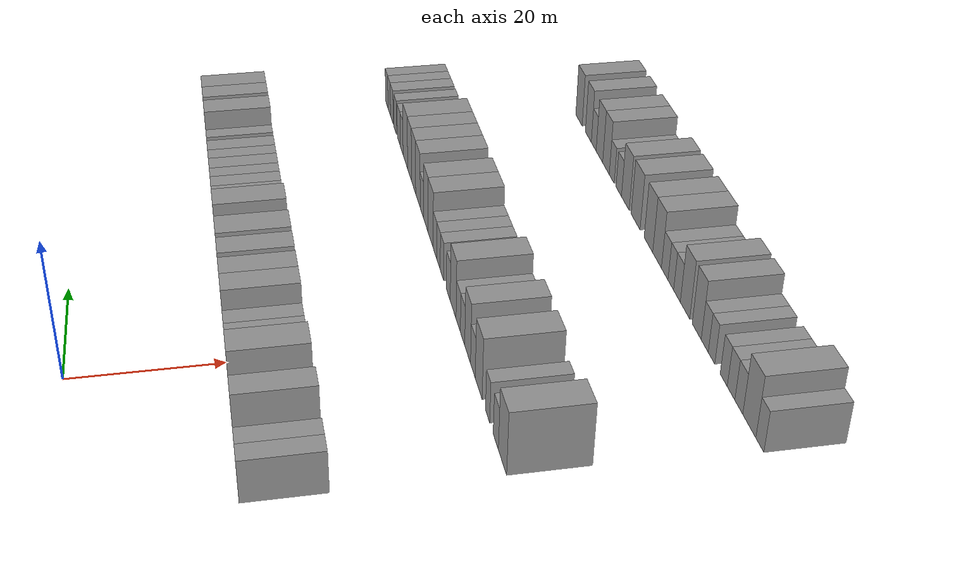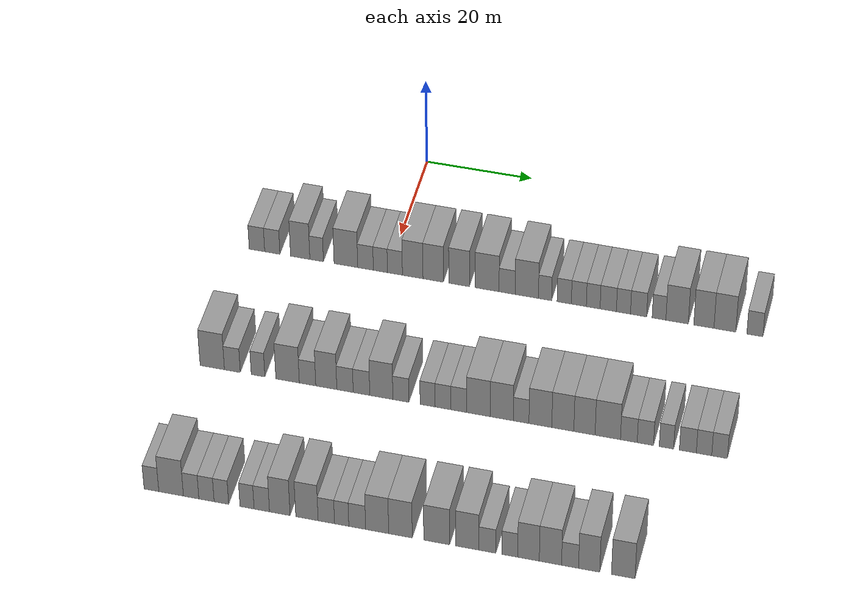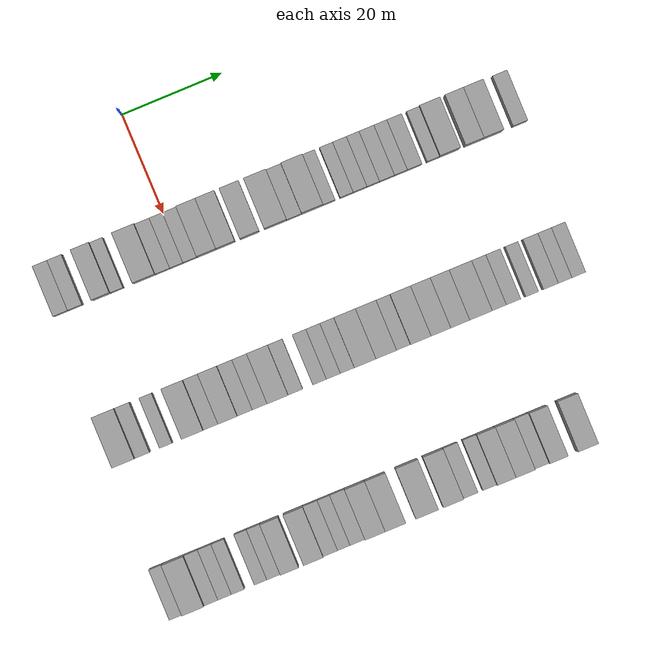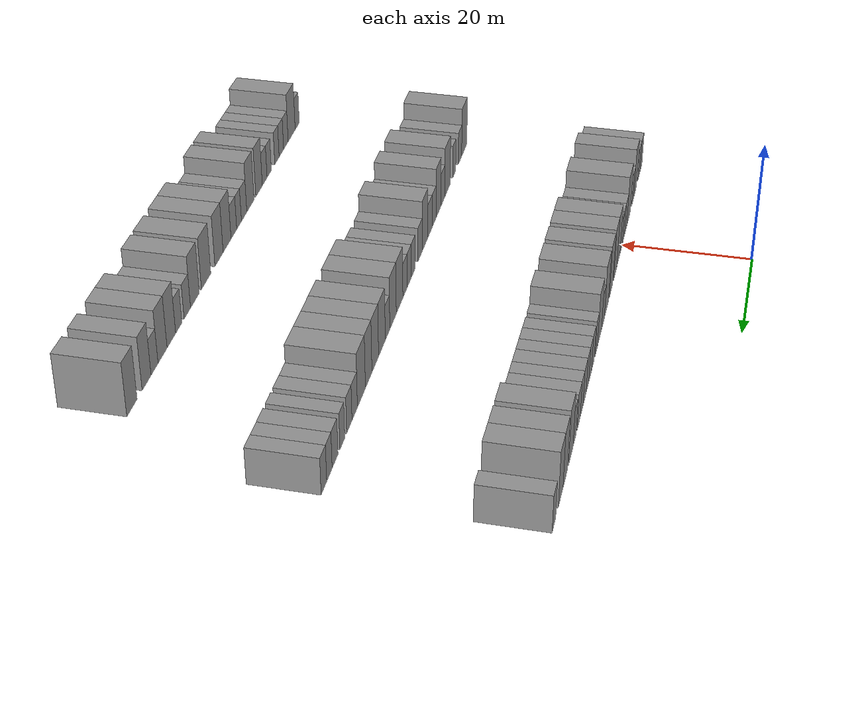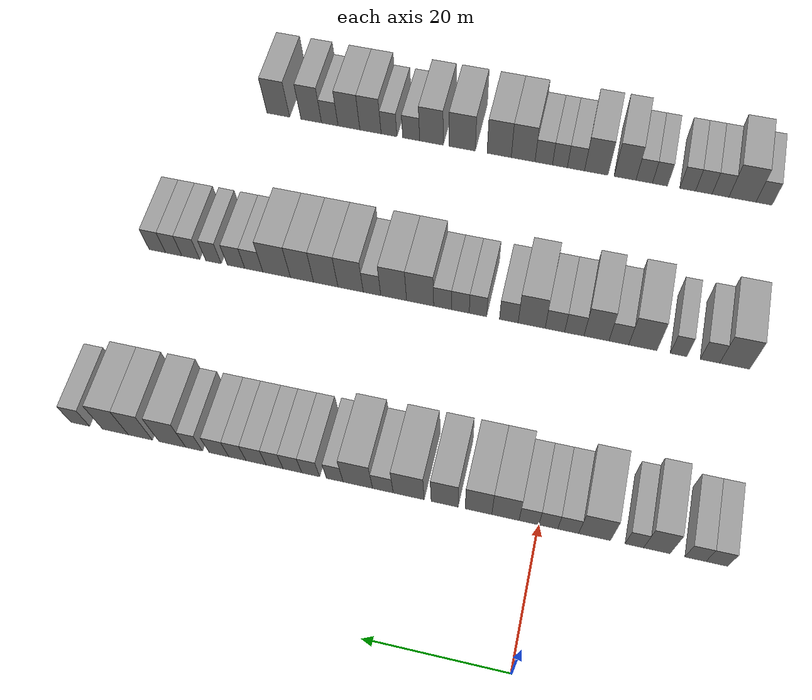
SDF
<sdf version="1.6">
 <world name="default">
  <model name="building_111">
   <static>1</static>
   <pose>25.0000 -24.4640 0 0.000000 0.000000 0.000000</pose>
   <link name="link">
    <pose>0 0 3.00 0 0 0</pose>
    <collision name="collision"><geometry><box><size>10.0000 2.9236 6.0000</size></box></geometry></collision>
    <visual name="visual">
     <cast_shadows>0</cast_shadows>
     <geometry><box><size>10.0000 2.9236 6.0000</size></box></geometry>
     <material>
      <script>
       <uri>model://grey_wall/materials/scripts</uri>
       <uri>model://grey_wall/materials/textures</uri>
       <name>vrc/grey_wall</name>
      </script>
     </material>
    </visual>
   </link>
  </model>
  <model name="building_112">
   <static>1</static>
   <pose>25.0000 -21.5684 0 0.000000 0.000000 0.000000</pose>
   <link name="link">
    <pose>0 0 3.00 0 0 0</pose>
    <collision name="collision"><geometry><box><size>10.0000 2.8677 6.0000</size></box></geometry></collision>
    <visual name="visual">
     <cast_shadows>0</cast_shadows>
     <geometry><box><size>10.0000 2.8677 6.0000</size></box></geometry>
     <material>
      <script>
       <uri>model://grey_wall/materials/scripts</uri>
       <uri>model://grey_wall/materials/textures</uri>
       <name>vrc/grey_wall</name>
      </script>
     </material>
    </visual>
   </link>
  </model>
  <model name="building_113">
   <static>1</static>
   <pose>25.0000 -16.3178 0 0.000000 0.000000 0.000000</pose>
   <link name="link">
    <pose>0 0 4.50 0 0 0</pose>
    <collision name="collision"><geometry><box><size>10.0000 3.6336 9.0000</size></box></geometry></collision>
    <visual name="visual">
     <cast_shadows>0</cast_shadows>
     <geometry><box><size>10.0000 3.6336 9.0000</size></box></geometry>
     <material>
      <script>
       <uri>model://grey_wall/materials/scripts</uri>
       <uri>model://grey_wall/materials/textures</uri>
       <name>vrc/grey_wall</name>
      </script>
     </material>
    </visual>
   </link>
  </model>
  <model name="building_114">
   <static>1</static>
   <pose>25.0000 -13.2259 0 0.000000 0.000000 0.000000</pose>
   <link name="link">
    <pose>0 0 3.00 0 0 0</pose>
    <collision name="collision"><geometry><box><size>10.0000 2.5501 6.0000</size></box></geometry></collision>
    <visual name="visual">
     <cast_shadows>0</cast_shadows>
     <geometry><box><size>10.0000 2.5501 6.0000</size></box></geometry>
     <material>
      <script>
       <uri>model://grey_wall/materials/scripts</uri>
       <uri>model://grey_wall/materials/textures</uri>
       <name>vrc/grey_wall</name>
      </script>
     </material>
    </visual>
   </link>
  </model>
  <model name="building_115">
   <static>1</static>
   <pose>25.0000 -7.7329 0 0.000000 0.000000 0.000000</pose>
   <link name="link">
    <pose>0 0 4.50 0 0 0</pose>
    <collision name="collision"><geometry><box><size>10.0000 4.4360 9.0000</size></box></geometry></collision>
    <visual name="visual">
     <cast_shadows>0</cast_shadows>
     <geometry><box><size>10.0000 4.4360 9.0000</size></box></geometry>
     <material>
      <script>
       <uri>model://grey_wall/materials/scripts</uri>
       <uri>model://grey_wall/materials/textures</uri>
       <name>vrc/grey_wall</name>
      </script>
     </material>
    </visual>
   </link>
  </model>
  <model name="building_116">
   <static>1</static>
   <pose>25.0000 -4.0563 0 0.000000 0.000000 0.000000</pose>
   <link name="link">
    <pose>0 0 3.00 0 0 0</pose>
    <collision name="collision"><geometry><box><size>10.0000 2.9171 6.0000</size></box></geometry></collision>
    <visual name="visual">
     <cast_shadows>0</cast_shadows>
     <geometry><box><size>10.0000 2.9171 6.0000</size></box></geometry>
     <material>
      <script>
       <uri>model://grey_wall/materials/scripts</uri>
       <uri>model://grey_wall/materials/textures</uri>
       <name>vrc/grey_wall</name>
      </script>
     </material>
    </visual>
   </link>
  </model>
  <model name="building_117">
   <static>1</static>
   <pose>25.0000 -1.2800 0 0.000000 0.000000 0.000000</pose>
   <link name="link">
    <pose>0 0 3.00 0 0 0</pose>
    <collision name="collision"><geometry><box><size>10.0000 2.6355 6.0000</size></box></geometry></collision>
    <visual name="visual">
     <cast_shadows>0</cast_shadows>
     <geometry><box><size>10.0000 2.6355 6.0000</size></box></geometry>
     <material>
      <script>
       <uri>model://grey_wall/materials/scripts</uri>
       <uri>model://grey_wall/materials/textures</uri>
       <name>vrc/grey_wall</name>
      </script>
     </material>
    </visual>
   </link>
  </model>
  <model name="building_118">
   <static>1</static>
   <pose>25.0000 1.4300 0 0.000000 0.000000 0.000000</pose>
   <link name="link">
    <pose>0 0 3.00 0 0 0</pose>
    <collision name="collision"><geometry><box><size>10.0000 2.7845 6.0000</size></box></geometry></collision>
    <visual name="visual">
     <cast_shadows>0</cast_shadows>
     <geometry><box><size>10.0000 2.7845 6.0000</size></box></geometry>
     <material>
      <script>
       <uri>model://grey_wall/materials/scripts</uri>
       <uri>model://grey_wall/materials/textures</uri>
       <name>vrc/grey_wall</name>
      </script>
     </material>
    </visual>
   </link>
  </model>
  <model name="building_119">
   <static>1</static>
   <pose>25.0000 4.7410 0 0.000000 0.000000 0.000000</pose>
   <link name="link">
    <pose>0 0 4.50 0 0 0</pose>
    <collision name="collision"><geometry><box><size>10.0000 3.8375 9.0000</size></box></geometry></collision>
    <visual name="visual">
     <cast_shadows>0</cast_shadows>
     <geometry><box><size>10.0000 3.8375 9.0000</size></box></geometry>
     <material>
      <script>
       <uri>model://grey_wall/materials/scripts</uri>
       <uri>model://grey_wall/materials/textures</uri>
       <name>vrc/grey_wall</name>
      </script>
     </material>
    </visual>
   </link>
  </model>
  <model name="building_120">
   <static>1</static>
   <pose>25.0000 8.5505 0 0.000000 0.000000 0.000000</pose>
   <link name="link">
    <pose>0 0 4.50 0 0 0</pose>
    <collision name="collision"><geometry><box><size>10.0000 3.7817 9.0000</size></box></geometry></collision>
    <visual name="visual">
     <cast_shadows>0</cast_shadows>
     <geometry><box><size>10.0000 3.7817 9.0000</size></box></geometry>
     <material>
      <script>
       <uri>model://grey_wall/materials/scripts</uri>
       <uri>model://grey_wall/materials/textures</uri>
       <name>vrc/grey_wall</name>
      </script>
     </material>
    </visual>
   </link>
  </model>
  <model name="building_121">
   <static>1</static>
   <pose>25.0000 13.3614 0 0.000000 0.000000 0.000000</pose>
   <link name="link">
    <pose>0 0 4.50 0 0 0</pose>
    <collision name="collision"><geometry><box><size>10.0000 3.8401 9.0000</size></box></geometry></collision>
    <visual name="visual">
     <cast_shadows>0</cast_shadows>
     <geometry><box><size>10.0000 3.8401 9.0000</size></box></geometry>
     <material>
      <script>
       <uri>model://grey_wall/materials/scripts</uri>
       <uri>model://grey_wall/materials/textures</uri>
       <name>vrc/grey_wall</name>
      </script>
     </material>
    </visual>
   </link>
  </model>
  <model name="building_122">
   <static>1</static>
   <pose>25.0000 18.5114 0 0.000000 0.000000 0.000000</pose>
   <link name="link">
    <pose>0 0 4.50 0 0 0</pose>
    <collision name="collision"><geometry><box><size>10.0000 4.4599 9.0000</size></box></geometry></collision>
    <visual name="visual">
     <cast_shadows>0</cast_shadows>
     <geometry><box><size>10.0000 4.4599 9.0000</size></box></geometry>
     <material>
      <script>
       <uri>model://grey_wall/materials/scripts</uri>
       <uri>model://grey_wall/materials/textures</uri>
       <name>vrc/grey_wall</name>
      </script>
     </material>
    </visual>
   </link>
  </model>
  <model name="building_123">
   <static>1</static>
   <pose>25.0000 22.2302 0 0.000000 0.000000 0.000000</pose>
   <link name="link">
    <pose>0 0 3.00 0 0 0</pose>
    <collision name="collision"><geometry><box><size>10.0000 2.9778 6.0000</size></box></geometry></collision>
    <visual name="visual">
     <cast_shadows>0</cast_shadows>
     <geometry><box><size>10.0000 2.9778 6.0000</size></box></geometry>
     <material>
      <script>
       <uri>model://grey_wall/materials/scripts</uri>
       <uri>model://grey_wall/materials/textures</uri>
       <name>vrc/grey_wall</name>
      </script>
     </material>
    </visual>
   </link>
  </model>
  <model name="building_124">
   <static>1</static>
   <pose>25.0000 25.8621 0 0.000000 0.000000 0.000000</pose>
   <link name="link">
    <pose>0 0 4.50 0 0 0</pose>
    <collision name="collision"><geometry><box><size>10.0000 4.2860 9.0000</size></box></geometry></collision>
    <visual name="visual">
     <cast_shadows>0</cast_shadows>
     <geometry><box><size>10.0000 4.2860 9.0000</size></box></geometry>
     <material>
      <script>
       <uri>model://grey_wall/materials/scripts</uri>
       <uri>model://grey_wall/materials/textures</uri>
       <name>vrc/grey_wall</name>
      </script>
     </material>
    </visual>
   </link>
  </model>
  <model name="building_125">
   <static>1</static>
   <pose>25.0000 29.2216 0 0.000000 0.000000 0.000000</pose>
   <link name="link">
    <pose>0 0 3.00 0 0 0</pose>
    <collision name="collision"><geometry><box><size>10.0000 2.4331 6.0000</size></box></geometry></collision>
    <visual name="visual">
     <cast_shadows>0</cast_shadows>
     <geometry><box><size>10.0000 2.4331 6.0000</size></box></geometry>
     <material>
      <script>
       <uri>model://grey_wall/materials/scripts</uri>
       <uri>model://grey_wall/materials/textures</uri>
       <name>vrc/grey_wall</name>
      </script>
     </material>
    </visual>
   </link>
  </model>
  <model name="building_126">
   <static>1</static>
   <pose>25.0000 32.7442 0 0.000000 0.000000 0.000000</pose>
   <link name="link">
    <pose>0 0 3.00 0 0 0</pose>
    <collision name="collision"><geometry><box><size>10.0000 2.6121 6.0000</size></box></geometry></collision>
    <visual name="visual">
     <cast_shadows>0</cast_shadows>
     <geometry><box><size>10.0000 2.6121 6.0000</size></box></geometry>
     <material>
      <script>
       <uri>model://grey_wall/materials/scripts</uri>
       <uri>model://grey_wall/materials/textures</uri>
       <name>vrc/grey_wall</name>
      </script>
     </material>
    </visual>
   </link>
  </model>
  <model name="building_127">
   <static>1</static>
   <pose>25.0000 35.4242 0 0.000000 0.000000 0.000000</pose>
   <link name="link">
    <pose>0 0 3.00 0 0 0</pose>
    <collision name="collision"><geometry><box><size>10.0000 2.7478 6.0000</size></box></geometry></collision>
    <visual name="visual">
     <cast_shadows>0</cast_shadows>
     <geometry><box><size>10.0000 2.7478 6.0000</size></box></geometry>
     <material>
      <script>
       <uri>model://grey_wall/materials/scripts</uri>
       <uri>model://grey_wall/materials/textures</uri>
       <name>vrc/grey_wall</name>
      </script>
     </material>
    </visual>
   </link>
  </model>
  <model name="building_128">
   <static>1</static>
   <pose>25.0000 38.0592 0 0.000000 0.000000 0.000000</pose>
   <link name="link">
    <pose>0 0 3.00 0 0 0</pose>
    <collision name="collision"><geometry><box><size>10.0000 2.5222 6.0000</size></box></geometry></collision>
    <visual name="visual">
     <cast_shadows>0</cast_shadows>
     <geometry><box><size>10.0000 2.5222 6.0000</size></box></geometry>
     <material>
      <script>
       <uri>model://grey_wall/materials/scripts</uri>
       <uri>model://grey_wall/materials/textures</uri>
       <name>vrc/grey_wall</name>
      </script>
     </material>
    </visual>
   </link>
  </model>
  <model name="building_129">
   <static>1</static>
   <pose>25.0000 40.8072 0 0.000000 0.000000 0.000000</pose>
   <link name="link">
    <pose>0 0 3.00 0 0 0</pose>
    <collision name="collision"><geometry><box><size>10.0000 2.9737 6.0000</size></box></geometry></collision>
    <visual name="visual">
     <cast_shadows>0</cast_shadows>
     <geometry><box><size>10.0000 2.9737 6.0000</size></box></geometry>
     <material>
      <script>
       <uri>model://grey_wall/materials/scripts</uri>
       <uri>model://grey_wall/materials/textures</uri>
       <name>vrc/grey_wall</name>
      </script>
     </material>
    </visual>
   </link>
  </model>
  <model name="building_130">
   <static>1</static>
   <pose>25.0000 43.5850 0 0.000000 0.000000 0.000000</pose>
   <link name="link">
    <pose>0 0 3.00 0 0 0</pose>
    <collision name="collision"><geometry><box><size>10.0000 2.5820 6.0000</size></box></geometry></collision>
    <visual name="visual">
     <cast_shadows>0</cast_shadows>
     <geometry><box><size>10.0000 2.5820 6.0000</size></box></geometry>
     <material>
      <script>
       <uri>model://grey_wall/materials/scripts</uri>
       <uri>model://grey_wall/materials/textures</uri>
       <name>vrc/grey_wall</name>
      </script>
     </material>
    </visual>
   </link>
  </model>
  <model name="building_131">
   <static>1</static>
   <pose>25.0000 46.3458 0 0.000000 0.000000 0.000000</pose>
   <link name="link">
    <pose>0 0 3.00 0 0 0</pose>
    <collision name="collision"><geometry><box><size>10.0000 2.9395 6.0000</size></box></geometry></collision>
    <visual name="visual">
     <cast_shadows>0</cast_shadows>
     <geometry><box><size>10.0000 2.9395 6.0000</size></box></geometry>
     <material>
      <script>
       <uri>model://grey_wall/materials/scripts</uri>
       <uri>model://grey_wall/materials/textures</uri>
       <name>vrc/grey_wall</name>
      </script>
     </material>
    </visual>
   </link>
  </model>
  <model name="building_132">
   <static>1</static>
   <pose>25.0000 50.0695 0 0.000000 0.000000 0.000000</pose>
   <link name="link">
    <pose>0 0 3.00 0 0 0</pose>
    <collision name="collision"><geometry><box><size>10.0000 2.5079 6.0000</size></box></geometry></collision>
    <visual name="visual">
     <cast_shadows>0</cast_shadows>
     <geometry><box><size>10.0000 2.5079 6.0000</size></box></geometry>
     <material>
      <script>
       <uri>model://grey_wall/materials/scripts</uri>
       <uri>model://grey_wall/materials/textures</uri>
       <name>vrc/grey_wall</name>
      </script>
     </material>
    </visual>
   </link>
  </model>
  <model name="building_133">
   <static>1</static>
   <pose>25.0000 53.3549 0 0.000000 0.000000 0.000000</pose>
   <link name="link">
    <pose>0 0 4.50 0 0 0</pose>
    <collision name="collision"><geometry><box><size>10.0000 4.0630 9.0000</size></box></geometry></collision>
    <visual name="visual">
     <cast_shadows>0</cast_shadows>
     <geometry><box><size>10.0000 4.0630 9.0000</size></box></geometry>
     <material>
      <script>
       <uri>model://grey_wall/materials/scripts</uri>
       <uri>model://grey_wall/materials/textures</uri>
       <name>vrc/grey_wall</name>
      </script>
     </material>
    </visual>
   </link>
  </model>
  <model name="building_134">
   <static>1</static>
   <pose>25.0000 58.2160 0 0.000000 0.000000 0.000000</pose>
   <link name="link">
    <pose>0 0 4.50 0 0 0</pose>
    <collision name="collision"><geometry><box><size>10.0000 3.6592 9.0000</size></box></geometry></collision>
    <visual name="visual">
     <cast_shadows>0</cast_shadows>
     <geometry><box><size>10.0000 3.6592 9.0000</size></box></geometry>
     <material>
      <script>
       <uri>model://grey_wall/materials/scripts</uri>
       <uri>model://grey_wall/materials/textures</uri>
       <name>vrc/grey_wall</name>
      </script>
     </material>
    </visual>
   </link>
  </model>
  <model name="building_135">
   <static>1</static>
   <pose>25.0000 62.0174 0 0.000000 0.000000 0.000000</pose>
   <link name="link">
    <pose>0 0 4.50 0 0 0</pose>
    <collision name="collision"><geometry><box><size>10.0000 3.9435 9.0000</size></box></geometry></collision>
    <visual name="visual">
     <cast_shadows>0</cast_shadows>
     <geometry><box><size>10.0000 3.9435 9.0000</size></box></geometry>
     <material>
      <script>
       <uri>model://grey_wall/materials/scripts</uri>
       <uri>model://grey_wall/materials/textures</uri>
       <name>vrc/grey_wall</name>
      </script>
     </material>
    </visual>
   </link>
  </model>
  <model name="building_136">
   <static>1</static>
   <pose>25.0000 67.4396 0 0.000000 0.000000 0.000000</pose>
   <link name="link">
    <pose>0 0 3.00 0 0 0</pose>
    <collision name="collision"><geometry><box><size>10.0000 2.9009 6.0000</size></box></geometry></collision>
    <visual name="visual">
     <cast_shadows>0</cast_shadows>
     <geometry><box><size>10.0000 2.9009 6.0000</size></box></geometry>
     <material>
      <script>
       <uri>model://grey_wall/materials/scripts</uri>
       <uri>model://grey_wall/materials/textures</uri>
       <name>vrc/grey_wall</name>
      </script>
     </material>
    </visual>
   </link>
  </model>
  <model name="building_356">
   <static>1</static>
   <pose>55.0000 -24.1548 0 0.000000 0.000000 0.000000</pose>
   <link name="link">
    <pose>0 0 4.50 0 0 0</pose>
    <collision name="collision"><geometry><box><size>10.0000 4.4505 9.0000</size></box></geometry></collision>
    <visual name="visual">
     <cast_shadows>0</cast_shadows>
     <geometry><box><size>10.0000 4.4505 9.0000</size></box></geometry>
     <material>
      <script>
       <uri>model://grey_wall/materials/scripts</uri>
       <uri>model://grey_wall/materials/textures</uri>
       <name>vrc/grey_wall</name>
      </script>
     </material>
    </visual>
   </link>
  </model>
  <model name="building_357">
   <static>1</static>
   <pose>55.0000 -20.4792 0 0.000000 0.000000 0.000000</pose>
   <link name="link">
    <pose>0 0 3.00 0 0 0</pose>
    <collision name="collision"><geometry><box><size>10.0000 2.9007 6.0000</size></box></geometry></collision>
    <visual name="visual">
     <cast_shadows>0</cast_shadows>
     <geometry><box><size>10.0000 2.9007 6.0000</size></box></geometry>
     <material>
      <script>
       <uri>model://grey_wall/materials/scripts</uri>
       <uri>model://grey_wall/materials/textures</uri>
       <name>vrc/grey_wall</name>
      </script>
     </material>
    </visual>
   </link>
  </model>
  <model name="building_358">
   <static>1</static>
   <pose>55.0000 -15.7833 0 0.000000 0.000000 0.000000</pose>
   <link name="link">
    <pose>0 0 3.00 0 0 0</pose>
    <collision name="collision"><geometry><box><size>10.0000 2.4911 6.0000</size></box></geometry></collision>
    <visual name="visual">
     <cast_shadows>0</cast_shadows>
     <geometry><box><size>10.0000 2.4911 6.0000</size></box></geometry>
     <material>
      <script>
       <uri>model://grey_wall/materials/scripts</uri>
       <uri>model://grey_wall/materials/textures</uri>
       <name>vrc/grey_wall</name>
      </script>
     </material>
    </visual>
   </link>
  </model>
  <model name="building_359">
   <static>1</static>
   <pose>55.0000 -10.3987 0 0.000000 0.000000 0.000000</pose>
   <link name="link">
    <pose>0 0 4.50 0 0 0</pose>
    <collision name="collision"><geometry><box><size>10.0000 4.2783 9.0000</size></box></geometry></collision>
    <visual name="visual">
     <cast_shadows>0</cast_shadows>
     <geometry><box><size>10.0000 4.2783 9.0000</size></box></geometry>
     <material>
      <script>
       <uri>model://grey_wall/materials/scripts</uri>
       <uri>model://grey_wall/materials/textures</uri>
       <name>vrc/grey_wall</name>
      </script>
     </material>
    </visual>
   </link>
  </model>
  <model name="building_360">
   <static>1</static>
   <pose>55.0000 -6.7649 0 0.000000 0.000000 0.000000</pose>
   <link name="link">
    <pose>0 0 3.00 0 0 0</pose>
    <collision name="collision"><geometry><box><size>10.0000 2.9892 6.0000</size></box></geometry></collision>
    <visual name="visual">
     <cast_shadows>0</cast_shadows>
     <geometry><box><size>10.0000 2.9892 6.0000</size></box></geometry>
     <material>
      <script>
       <uri>model://grey_wall/materials/scripts</uri>
       <uri>model://grey_wall/materials/textures</uri>
       <name>vrc/grey_wall</name>
      </script>
     </material>
    </visual>
   </link>
  </model>
  <model name="building_361">
   <static>1</static>
   <pose>55.0000 -3.3612 0 0.000000 0.000000 0.000000</pose>
   <link name="link">
    <pose>0 0 4.50 0 0 0</pose>
    <collision name="collision"><geometry><box><size>10.0000 3.8183 9.0000</size></box></geometry></collision>
    <visual name="visual">
     <cast_shadows>0</cast_shadows>
     <geometry><box><size>10.0000 3.8183 9.0000</size></box></geometry>
     <material>
      <script>
       <uri>model://grey_wall/materials/scripts</uri>
       <uri>model://grey_wall/materials/textures</uri>
       <name>vrc/grey_wall</name>
      </script>
     </material>
    </visual>
   </link>
  </model>
  <model name="building_362">
   <static>1</static>
   <pose>55.0000 0.0303 0 0.000000 0.000000 0.000000</pose>
   <link name="link">
    <pose>0 0 3.00 0 0 0</pose>
    <collision name="collision"><geometry><box><size>10.0000 2.9646 6.0000</size></box></geometry></collision>
    <visual name="visual">
     <cast_shadows>0</cast_shadows>
     <geometry><box><size>10.0000 2.9646 6.0000</size></box></geometry>
     <material>
      <script>
       <uri>model://grey_wall/materials/scripts</uri>
       <uri>model://grey_wall/materials/textures</uri>
       <name>vrc/grey_wall</name>
      </script>
     </material>
    </visual>
   </link>
  </model>
  <model name="building_363">
   <static>1</static>
   <pose>55.0000 3.0092 0 0.000000 0.000000 0.000000</pose>
   <link name="link">
    <pose>0 0 3.00 0 0 0</pose>
    <collision name="collision"><geometry><box><size>10.0000 2.9932 6.0000</size></box></geometry></collision>
    <visual name="visual">
     <cast_shadows>0</cast_shadows>
     <geometry><box><size>10.0000 2.9932 6.0000</size></box></geometry>
     <material>
      <script>
       <uri>model://grey_wall/materials/scripts</uri>
       <uri>model://grey_wall/materials/textures</uri>
       <name>vrc/grey_wall</name>
      </script>
     </material>
    </visual>
   </link>
  </model>
  <model name="building_364">
   <static>1</static>
   <pose>55.0000 6.5915 0 0.000000 0.000000 0.000000</pose>
   <link name="link">
    <pose>0 0 4.50 0 0 0</pose>
    <collision name="collision"><geometry><box><size>10.0000 4.1714 9.0000</size></box></geometry></collision>
    <visual name="visual">
     <cast_shadows>0</cast_shadows>
     <geometry><box><size>10.0000 4.1714 9.0000</size></box></geometry>
     <material>
      <script>
       <uri>model://grey_wall/materials/scripts</uri>
       <uri>model://grey_wall/materials/textures</uri>
       <name>vrc/grey_wall</name>
      </script>
     </material>
    </visual>
   </link>
  </model>
  <model name="building_365">
   <static>1</static>
   <pose>55.0000 10.1270 0 0.000000 0.000000 0.000000</pose>
   <link name="link">
    <pose>0 0 3.00 0 0 0</pose>
    <collision name="collision"><geometry><box><size>10.0000 2.8998 6.0000</size></box></geometry></collision>
    <visual name="visual">
     <cast_shadows>0</cast_shadows>
     <geometry><box><size>10.0000 2.8998 6.0000</size></box></geometry>
     <material>
      <script>
       <uri>model://grey_wall/materials/scripts</uri>
       <uri>model://grey_wall/materials/textures</uri>
       <name>vrc/grey_wall</name>
      </script>
     </material>
    </visual>
   </link>
  </model>
  <model name="building_366">
   <static>1</static>
   <pose>55.0000 14.9346 0 0.000000 0.000000 0.000000</pose>
   <link name="link">
    <pose>0 0 3.00 0 0 0</pose>
    <collision name="collision"><geometry><box><size>10.0000 2.7154 6.0000</size></box></geometry></collision>
    <visual name="visual">
     <cast_shadows>0</cast_shadows>
     <geometry><box><size>10.0000 2.7154 6.0000</size></box></geometry>
     <material>
      <script>
       <uri>model://grey_wall/materials/scripts</uri>
       <uri>model://grey_wall/materials/textures</uri>
       <name>vrc/grey_wall</name>
      </script>
     </material>
    </visual>
   </link>
  </model>
  <model name="building_367">
   <static>1</static>
   <pose>55.0000 17.6912 0 0.000000 0.000000 0.000000</pose>
   <link name="link">
    <pose>0 0 3.00 0 0 0</pose>
    <collision name="collision"><geometry><box><size>10.0000 2.7979 6.0000</size></box></geometry></collision>
    <visual name="visual">
     <cast_shadows>0</cast_shadows>
     <geometry><box><size>10.0000 2.7979 6.0000</size></box></geometry>
     <material>
      <script>
       <uri>model://grey_wall/materials/scripts</uri>
       <uri>model://grey_wall/materials/textures</uri>
       <name>vrc/grey_wall</name>
      </script>
     </material>
    </visual>
   </link>
  </model>
  <model name="building_368">
   <static>1</static>
   <pose>55.0000 20.4793 0 0.000000 0.000000 0.000000</pose>
   <link name="link">
    <pose>0 0 3.00 0 0 0</pose>
    <collision name="collision"><geometry><box><size>10.0000 2.7785 6.0000</size></box></geometry></collision>
    <visual name="visual">
     <cast_shadows>0</cast_shadows>
     <geometry><box><size>10.0000 2.7785 6.0000</size></box></geometry>
     <material>
      <script>
       <uri>model://grey_wall/materials/scripts</uri>
       <uri>model://grey_wall/materials/textures</uri>
       <name>vrc/grey_wall</name>
      </script>
     </material>
    </visual>
   </link>
  </model>
  <model name="building_369">
   <static>1</static>
   <pose>55.0000 24.0112 0 0.000000 0.000000 0.000000</pose>
   <link name="link">
    <pose>0 0 4.50 0 0 0</pose>
    <collision name="collision"><geometry><box><size>10.0000 4.2852 9.0000</size></box></geometry></collision>
    <visual name="visual">
     <cast_shadows>0</cast_shadows>
     <geometry><box><size>10.0000 4.2852 9.0000</size></box></geometry>
     <material>
      <script>
       <uri>model://grey_wall/materials/scripts</uri>
       <uri>model://grey_wall/materials/textures</uri>
       <name>vrc/grey_wall</name>
      </script>
     </material>
    </visual>
   </link>
  </model>
  <model name="building_370">
   <static>1</static>
   <pose>55.0000 28.2032 0 0.000000 0.000000 0.000000</pose>
   <link name="link">
    <pose>0 0 4.50 0 0 0</pose>
    <collision name="collision"><geometry><box><size>10.0000 4.0988 9.0000</size></box></geometry></collision>
    <visual name="visual">
     <cast_shadows>0</cast_shadows>
     <geometry><box><size>10.0000 4.0988 9.0000</size></box></geometry>
     <material>
      <script>
       <uri>model://grey_wall/materials/scripts</uri>
       <uri>model://grey_wall/materials/textures</uri>
       <name>vrc/grey_wall</name>
      </script>
     </material>
    </visual>
   </link>
  </model>
  <model name="building_371">
   <static>1</static>
   <pose>55.0000 31.6506 0 0.000000 0.000000 0.000000</pose>
   <link name="link">
    <pose>0 0 3.00 0 0 0</pose>
    <collision name="collision"><geometry><box><size>10.0000 2.7960 6.0000</size></box></geometry></collision>
    <visual name="visual">
     <cast_shadows>0</cast_shadows>
     <geometry><box><size>10.0000 2.7960 6.0000</size></box></geometry>
     <material>
      <script>
       <uri>model://grey_wall/materials/scripts</uri>
       <uri>model://grey_wall/materials/textures</uri>
       <name>vrc/grey_wall</name>
      </script>
     </material>
    </visual>
   </link>
  </model>
  <model name="building_372">
   <static>1</static>
   <pose>55.0000 35.0815 0 0.000000 0.000000 0.000000</pose>
   <link name="link">
    <pose>0 0 4.50 0 0 0</pose>
    <collision name="collision"><geometry><box><size>10.0000 4.0657 9.0000</size></box></geometry></collision>
    <visual name="visual">
     <cast_shadows>0</cast_shadows>
     <geometry><box><size>10.0000 4.0657 9.0000</size></box></geometry>
     <material>
      <script>
       <uri>model://grey_wall/materials/scripts</uri>
       <uri>model://grey_wall/materials/textures</uri>
       <name>vrc/grey_wall</name>
      </script>
     </material>
    </visual>
   </link>
  </model>
  <model name="building_373">
   <static>1</static>
   <pose>55.0000 39.0700 0 0.000000 0.000000 0.000000</pose>
   <link name="link">
    <pose>0 0 4.50 0 0 0</pose>
    <collision name="collision"><geometry><box><size>10.0000 3.9113 9.0000</size></box></geometry></collision>
    <visual name="visual">
     <cast_shadows>0</cast_shadows>
     <geometry><box><size>10.0000 3.9113 9.0000</size></box></geometry>
     <material>
      <script>
       <uri>model://grey_wall/materials/scripts</uri>
       <uri>model://grey_wall/materials/textures</uri>
       <name>vrc/grey_wall</name>
      </script>
     </material>
    </visual>
   </link>
  </model>
  <model name="building_374">
   <static>1</static>
   <pose>55.0000 42.9078 0 0.000000 0.000000 0.000000</pose>
   <link name="link">
    <pose>0 0 4.50 0 0 0</pose>
    <collision name="collision"><geometry><box><size>10.0000 3.7644 9.0000</size></box></geometry></collision>
    <visual name="visual">
     <cast_shadows>0</cast_shadows>
     <geometry><box><size>10.0000 3.7644 9.0000</size></box></geometry>
     <material>
      <script>
       <uri>model://grey_wall/materials/scripts</uri>
       <uri>model://grey_wall/materials/textures</uri>
       <name>vrc/grey_wall</name>
      </script>
     </material>
    </visual>
   </link>
  </model>
  <model name="building_375">
   <static>1</static>
   <pose>55.0000 47.0318 0 0.000000 0.000000 0.000000</pose>
   <link name="link">
    <pose>0 0 4.50 0 0 0</pose>
    <collision name="collision"><geometry><box><size>10.0000 4.4837 9.0000</size></box></geometry></collision>
    <visual name="visual">
     <cast_shadows>0</cast_shadows>
     <geometry><box><size>10.0000 4.4837 9.0000</size></box></geometry>
     <material>
      <script>
       <uri>model://grey_wall/materials/scripts</uri>
       <uri>model://grey_wall/materials/textures</uri>
       <name>vrc/grey_wall</name>
      </script>
     </material>
    </visual>
   </link>
  </model>
  <model name="building_376">
   <static>1</static>
   <pose>55.0000 50.7520 0 0.000000 0.000000 0.000000</pose>
   <link name="link">
    <pose>0 0 3.00 0 0 0</pose>
    <collision name="collision"><geometry><box><size>10.0000 2.9566 6.0000</size></box></geometry></collision>
    <visual name="visual">
     <cast_shadows>0</cast_shadows>
     <geometry><box><size>10.0000 2.9566 6.0000</size></box></geometry>
     <material>
      <script>
       <uri>model://grey_wall/materials/scripts</uri>
       <uri>model://grey_wall/materials/textures</uri>
       <name>vrc/grey_wall</name>
      </script>
     </material>
    </visual>
   </link>
  </model>
  <model name="building_377">
   <static>1</static>
   <pose>55.0000 53.6667 0 0.000000 0.000000 0.000000</pose>
   <link name="link">
    <pose>0 0 3.00 0 0 0</pose>
    <collision name="collision"><geometry><box><size>10.0000 2.8728 6.0000</size></box></geometry></collision>
    <visual name="visual">
     <cast_shadows>0</cast_shadows>
     <geometry><box><size>10.0000 2.8728 6.0000</size></box></geometry>
     <material>
      <script>
       <uri>model://grey_wall/materials/scripts</uri>
       <uri>model://grey_wall/materials/textures</uri>
       <name>vrc/grey_wall</name>
      </script>
     </material>
    </visual>
   </link>
  </model>
  <model name="building_378">
   <static>1</static>
   <pose>55.0000 57.3732 0 0.000000 0.000000 0.000000</pose>
   <link name="link">
    <pose>0 0 3.00 0 0 0</pose>
    <collision name="collision"><geometry><box><size>10.0000 2.5402 6.0000</size></box></geometry></collision>
    <visual name="visual">
     <cast_shadows>0</cast_shadows>
     <geometry><box><size>10.0000 2.5402 6.0000</size></box></geometry>
     <material>
      <script>
       <uri>model://grey_wall/materials/scripts</uri>
       <uri>model://grey_wall/materials/textures</uri>
       <name>vrc/grey_wall</name>
      </script>
     </material>
    </visual>
   </link>
  </model>
  <model name="building_379">
   <static>1</static>
   <pose>55.0000 61.1310 0 0.000000 0.000000 0.000000</pose>
   <link name="link">
    <pose>0 0 3.00 0 0 0</pose>
    <collision name="collision"><geometry><box><size>10.0000 2.9754 6.0000</size></box></geometry></collision>
    <visual name="visual">
     <cast_shadows>0</cast_shadows>
     <geometry><box><size>10.0000 2.9754 6.0000</size></box></geometry>
     <material>
      <script>
       <uri>model://grey_wall/materials/scripts</uri>
       <uri>model://grey_wall/materials/textures</uri>
       <name>vrc/grey_wall</name>
      </script>
     </material>
    </visual>
   </link>
  </model>
  <model name="building_380">
   <static>1</static>
   <pose>55.0000 63.9722 0 0.000000 0.000000 0.000000</pose>
   <link name="link">
    <pose>0 0 3.00 0 0 0</pose>
    <collision name="collision"><geometry><box><size>10.0000 2.7070 6.0000</size></box></geometry></collision>
    <visual name="visual">
     <cast_shadows>0</cast_shadows>
     <geometry><box><size>10.0000 2.7070 6.0000</size></box></geometry>
     <material>
      <script>
       <uri>model://grey_wall/materials/scripts</uri>
       <uri>model://grey_wall/materials/textures</uri>
       <name>vrc/grey_wall</name>
      </script>
     </material>
    </visual>
   </link>
  </model>
  <model name="building_381">
   <static>1</static>
   <pose>55.0000 66.6975 0 0.000000 0.000000 0.000000</pose>
   <link name="link">
    <pose>0 0 3.00 0 0 0</pose>
    <collision name="collision"><geometry><box><size>10.0000 2.7436 6.0000</size></box></geometry></collision>
    <visual name="visual">
     <cast_shadows>0</cast_shadows>
     <geometry><box><size>10.0000 2.7436 6.0000</size></box></geometry>
     <material>
      <script>
       <uri>model://grey_wall/materials/scripts</uri>
       <uri>model://grey_wall/materials/textures</uri>
       <name>vrc/grey_wall</name>
      </script>
     </material>
    </visual>
   </link>
  </model>
  <model name="building_590">
   <static>1</static>
   <pose>85.0000 -26.1889 0 0.000000 0.000000 0.000000</pose>
   <link name="link">
    <pose>0 0 3.00 0 0 0</pose>
    <collision name="collision"><geometry><box><size>10.0000 2.6073 6.0000</size></box></geometry></collision>
    <visual name="visual">
     <cast_shadows>0</cast_shadows>
     <geometry><box><size>10.0000 2.6073 6.0000</size></box></geometry>
     <material>
      <script>
       <uri>model://grey_wall/materials/scripts</uri>
       <uri>model://grey_wall/materials/textures</uri>
       <name>vrc/grey_wall</name>
      </script>
     </material>
    </visual>
   </link>
  </model>
  <model name="building_591">
   <static>1</static>
   <pose>85.0000 -22.6970 0 0.000000 0.000000 0.000000</pose>
   <link name="link">
    <pose>0 0 4.50 0 0 0</pose>
    <collision name="collision"><geometry><box><size>10.0000 4.3766 9.0000</size></box></geometry></collision>
    <visual name="visual">
     <cast_shadows>0</cast_shadows>
     <geometry><box><size>10.0000 4.3766 9.0000</size></box></geometry>
     <material>
      <script>
       <uri>model://grey_wall/materials/scripts</uri>
       <uri>model://grey_wall/materials/textures</uri>
       <name>vrc/grey_wall</name>
      </script>
     </material>
    </visual>
   </link>
  </model>
  <model name="building_592">
   <static>1</static>
   <pose>85.0000 -19.1385 0 0.000000 0.000000 0.000000</pose>
   <link name="link">
    <pose>0 0 3.00 0 0 0</pose>
    <collision name="collision"><geometry><box><size>10.0000 2.7404 6.0000</size></box></geometry></collision>
    <visual name="visual">
     <cast_shadows>0</cast_shadows>
     <geometry><box><size>10.0000 2.7404 6.0000</size></box></geometry>
     <material>
      <script>
       <uri>model://grey_wall/materials/scripts</uri>
       <uri>model://grey_wall/materials/textures</uri>
       <name>vrc/grey_wall</name>
      </script>
     </material>
    </visual>
   </link>
  </model>
  <model name="building_593">
   <static>1</static>
   <pose>85.0000 -16.4190 0 0.000000 0.000000 0.000000</pose>
   <link name="link">
    <pose>0 0 3.00 0 0 0</pose>
    <collision name="collision"><geometry><box><size>10.0000 2.6986 6.0000</size></box></geometry></collision>
    <visual name="visual">
     <cast_shadows>0</cast_shadows>
     <geometry><box><size>10.0000 2.6986 6.0000</size></box></geometry>
     <material>
      <script>
       <uri>model://grey_wall/materials/scripts</uri>
       <uri>model://grey_wall/materials/textures</uri>
       <name>vrc/grey_wall</name>
      </script>
     </material>
    </visual>
   </link>
  </model>
  <model name="building_594">
   <static>1</static>
   <pose>85.0000 -13.7810 0 0.000000 0.000000 0.000000</pose>
   <link name="link">
    <pose>0 0 3.00 0 0 0</pose>
    <collision name="collision"><geometry><box><size>10.0000 2.5774 6.0000</size></box></geometry></collision>
    <visual name="visual">
     <cast_shadows>0</cast_shadows>
     <geometry><box><size>10.0000 2.5774 6.0000</size></box></geometry>
     <material>
      <script>
       <uri>model://grey_wall/materials/scripts</uri>
       <uri>model://grey_wall/materials/textures</uri>
       <name>vrc/grey_wall</name>
      </script>
     </material>
    </visual>
   </link>
  </model>
  <model name="building_595">
   <static>1</static>
   <pose>85.0000 -9.2481 0 0.000000 0.000000 0.000000</pose>
   <link name="link">
    <pose>0 0 3.00 0 0 0</pose>
    <collision name="collision"><geometry><box><size>10.0000 2.4883 6.0000</size></box></geometry></collision>
    <visual name="visual">
     <cast_shadows>0</cast_shadows>
     <geometry><box><size>10.0000 2.4883 6.0000</size></box></geometry>
     <material>
      <script>
       <uri>model://grey_wall/materials/scripts</uri>
       <uri>model://grey_wall/materials/textures</uri>
       <name>vrc/grey_wall</name>
      </script>
     </material>
    </visual>
   </link>
  </model>
  <model name="building_596">
   <static>1</static>
   <pose>85.0000 -6.6465 0 0.000000 0.000000 0.000000</pose>
   <link name="link">
    <pose>0 0 3.00 0 0 0</pose>
    <collision name="collision"><geometry><box><size>10.0000 2.7150 6.0000</size></box></geometry></collision>
    <visual name="visual">
     <cast_shadows>0</cast_shadows>
     <geometry><box><size>10.0000 2.7150 6.0000</size></box></geometry>
     <material>
      <script>
       <uri>model://grey_wall/materials/scripts</uri>
       <uri>model://grey_wall/materials/textures</uri>
       <name>vrc/grey_wall</name>
      </script>
     </material>
    </visual>
   </link>
  </model>
  <model name="building_597">
   <static>1</static>
   <pose>85.0000 -3.4780 0 0.000000 0.000000 0.000000</pose>
   <link name="link">
    <pose>0 0 4.50 0 0 0</pose>
    <collision name="collision"><geometry><box><size>10.0000 3.6219 9.0000</size></box></geometry></collision>
    <visual name="visual">
     <cast_shadows>0</cast_shadows>
     <geometry><box><size>10.0000 3.6219 9.0000</size></box></geometry>
     <material>
      <script>
       <uri>model://grey_wall/materials/scripts</uri>
       <uri>model://grey_wall/materials/textures</uri>
       <name>vrc/grey_wall</name>
      </script>
     </material>
    </visual>
   </link>
  </model>
  <model name="building_598">
   <static>1</static>
   <pose>85.0000 1.2938 0 0.000000 0.000000 0.000000</pose>
   <link name="link">
    <pose>0 0 4.50 0 0 0</pose>
    <collision name="collision"><geometry><box><size>10.0000 3.9216 9.0000</size></box></geometry></collision>
    <visual name="visual">
     <cast_shadows>0</cast_shadows>
     <geometry><box><size>10.0000 3.9216 9.0000</size></box></geometry>
     <material>
      <script>
       <uri>model://grey_wall/materials/scripts</uri>
       <uri>model://grey_wall/materials/textures</uri>
       <name>vrc/grey_wall</name>
      </script>
     </material>
    </visual>
   </link>
  </model>
  <model name="building_599">
   <static>1</static>
   <pose>85.0000 4.6931 0 0.000000 0.000000 0.000000</pose>
   <link name="link">
    <pose>0 0 3.00 0 0 0</pose>
    <collision name="collision"><geometry><box><size>10.0000 2.8771 6.0000</size></box></geometry></collision>
    <visual name="visual">
     <cast_shadows>0</cast_shadows>
     <geometry><box><size>10.0000 2.8771 6.0000</size></box></geometry>
     <material>
      <script>
       <uri>model://grey_wall/materials/scripts</uri>
       <uri>model://grey_wall/materials/textures</uri>
       <name>vrc/grey_wall</name>
      </script>
     </material>
    </visual>
   </link>
  </model>
  <model name="building_600">
   <static>1</static>
   <pose>85.0000 7.3771 0 0.000000 0.000000 0.000000</pose>
   <link name="link">
    <pose>0 0 3.00 0 0 0</pose>
    <collision name="collision"><geometry><box><size>10.0000 2.4909 6.0000</size></box></geometry></collision>
    <visual name="visual">
     <cast_shadows>0</cast_shadows>
     <geometry><box><size>10.0000 2.4909 6.0000</size></box></geometry>
     <material>
      <script>
       <uri>model://grey_wall/materials/scripts</uri>
       <uri>model://grey_wall/materials/textures</uri>
       <name>vrc/grey_wall</name>
      </script>
     </material>
    </visual>
   </link>
  </model>
  <model name="building_601">
   <static>1</static>
   <pose>85.0000 10.0949 0 0.000000 0.000000 0.000000</pose>
   <link name="link">
    <pose>0 0 3.00 0 0 0</pose>
    <collision name="collision"><geometry><box><size>10.0000 2.9447 6.0000</size></box></geometry></collision>
    <visual name="visual">
     <cast_shadows>0</cast_shadows>
     <geometry><box><size>10.0000 2.9447 6.0000</size></box></geometry>
     <material>
      <script>
       <uri>model://grey_wall/materials/scripts</uri>
       <uri>model://grey_wall/materials/textures</uri>
       <name>vrc/grey_wall</name>
      </script>
     </material>
    </visual>
   </link>
  </model>
  <model name="building_602">
   <static>1</static>
   <pose>85.0000 13.5741 0 0.000000 0.000000 0.000000</pose>
   <link name="link">
    <pose>0 0 4.50 0 0 0</pose>
    <collision name="collision"><geometry><box><size>10.0000 4.0136 9.0000</size></box></geometry></collision>
    <visual name="visual">
     <cast_shadows>0</cast_shadows>
     <geometry><box><size>10.0000 4.0136 9.0000</size></box></geometry>
     <material>
      <script>
       <uri>model://grey_wall/materials/scripts</uri>
       <uri>model://grey_wall/materials/textures</uri>
       <name>vrc/grey_wall</name>
      </script>
     </material>
    </visual>
   </link>
  </model>
  <model name="building_603">
   <static>1</static>
   <pose>85.0000 17.6319 0 0.000000 0.000000 0.000000</pose>
   <link name="link">
    <pose>0 0 4.50 0 0 0</pose>
    <collision name="collision"><geometry><box><size>10.0000 4.1021 9.0000</size></box></geometry></collision>
    <visual name="visual">
     <cast_shadows>0</cast_shadows>
     <geometry><box><size>10.0000 4.1021 9.0000</size></box></geometry>
     <material>
      <script>
       <uri>model://grey_wall/materials/scripts</uri>
       <uri>model://grey_wall/materials/textures</uri>
       <name>vrc/grey_wall</name>
      </script>
     </material>
    </visual>
   </link>
  </model>
  <model name="building_604">
   <static>1</static>
   <pose>85.0000 23.9300 0 0.000000 0.000000 0.000000</pose>
   <link name="link">
    <pose>0 0 4.50 0 0 0</pose>
    <collision name="collision"><geometry><box><size>10.0000 4.4939 9.0000</size></box></geometry></collision>
    <visual name="visual">
     <cast_shadows>0</cast_shadows>
     <geometry><box><size>10.0000 4.4939 9.0000</size></box></geometry>
     <material>
      <script>
       <uri>model://grey_wall/materials/scripts</uri>
       <uri>model://grey_wall/materials/textures</uri>
       <name>vrc/grey_wall</name>
      </script>
     </material>
    </visual>
   </link>
  </model>
  <model name="building_605">
   <static>1</static>
   <pose>85.0000 29.2043 0 0.000000 0.000000 0.000000</pose>
   <link name="link">
    <pose>0 0 4.50 0 0 0</pose>
    <collision name="collision"><geometry><box><size>10.0000 4.0549 9.0000</size></box></geometry></collision>
    <visual name="visual">
     <cast_shadows>0</cast_shadows>
     <geometry><box><size>10.0000 4.0549 9.0000</size></box></geometry>
     <material>
      <script>
       <uri>model://grey_wall/materials/scripts</uri>
       <uri>model://grey_wall/materials/textures</uri>
       <name>vrc/grey_wall</name>
      </script>
     </material>
    </visual>
   </link>
  </model>
  <model name="building_606">
   <static>1</static>
   <pose>85.0000 32.6960 0 0.000000 0.000000 0.000000</pose>
   <link name="link">
    <pose>0 0 3.00 0 0 0</pose>
    <collision name="collision"><geometry><box><size>10.0000 2.9284 6.0000</size></box></geometry></collision>
    <visual name="visual">
     <cast_shadows>0</cast_shadows>
     <geometry><box><size>10.0000 2.9284 6.0000</size></box></geometry>
     <material>
      <script>
       <uri>model://grey_wall/materials/scripts</uri>
       <uri>model://grey_wall/materials/textures</uri>
       <name>vrc/grey_wall</name>
      </script>
     </material>
    </visual>
   </link>
  </model>
  <model name="building_607">
   <static>1</static>
   <pose>85.0000 36.5300 0 0.000000 0.000000 0.000000</pose>
   <link name="link">
    <pose>0 0 3.00 0 0 0</pose>
    <collision name="collision"><geometry><box><size>10.0000 2.7398 6.0000</size></box></geometry></collision>
    <visual name="visual">
     <cast_shadows>0</cast_shadows>
     <geometry><box><size>10.0000 2.7398 6.0000</size></box></geometry>
     <material>
      <script>
       <uri>model://grey_wall/materials/scripts</uri>
       <uri>model://grey_wall/materials/textures</uri>
       <name>vrc/grey_wall</name>
      </script>
     </material>
    </visual>
   </link>
  </model>
  <model name="building_608">
   <static>1</static>
   <pose>85.0000 39.7579 0 0.000000 0.000000 0.000000</pose>
   <link name="link">
    <pose>0 0 4.50 0 0 0</pose>
    <collision name="collision"><geometry><box><size>10.0000 3.7160 9.0000</size></box></geometry></collision>
    <visual name="visual">
     <cast_shadows>0</cast_shadows>
     <geometry><box><size>10.0000 3.7160 9.0000</size></box></geometry>
     <material>
      <script>
       <uri>model://grey_wall/materials/scripts</uri>
       <uri>model://grey_wall/materials/textures</uri>
       <name>vrc/grey_wall</name>
      </script>
     </material>
    </visual>
   </link>
  </model>
  <model name="building_609">
   <static>1</static>
   <pose>85.0000 43.5272 0 0.000000 0.000000 0.000000</pose>
   <link name="link">
    <pose>0 0 4.50 0 0 0</pose>
    <collision name="collision"><geometry><box><size>10.0000 3.8226 9.0000</size></box></geometry></collision>
    <visual name="visual">
     <cast_shadows>0</cast_shadows>
     <geometry><box><size>10.0000 3.8226 9.0000</size></box></geometry>
     <material>
      <script>
       <uri>model://grey_wall/materials/scripts</uri>
       <uri>model://grey_wall/materials/textures</uri>
       <name>vrc/grey_wall</name>
      </script>
     </material>
    </visual>
   </link>
  </model>
  <model name="building_610">
   <static>1</static>
   <pose>85.0000 46.8882 0 0.000000 0.000000 0.000000</pose>
   <link name="link">
    <pose>0 0 3.00 0 0 0</pose>
    <collision name="collision"><geometry><box><size>10.0000 2.8993 6.0000</size></box></geometry></collision>
    <visual name="visual">
     <cast_shadows>0</cast_shadows>
     <geometry><box><size>10.0000 2.8993 6.0000</size></box></geometry>
     <material>
      <script>
       <uri>model://grey_wall/materials/scripts</uri>
       <uri>model://grey_wall/materials/textures</uri>
       <name>vrc/grey_wall</name>
      </script>
     </material>
    </visual>
   </link>
  </model>
  <model name="building_611">
   <static>1</static>
   <pose>85.0000 50.1542 0 0.000000 0.000000 0.000000</pose>
   <link name="link">
    <pose>0 0 4.50 0 0 0</pose>
    <collision name="collision"><geometry><box><size>10.0000 3.6327 9.0000</size></box></geometry></collision>
    <visual name="visual">
     <cast_shadows>0</cast_shadows>
     <geometry><box><size>10.0000 3.6327 9.0000</size></box></geometry>
     <material>
      <script>
       <uri>model://grey_wall/materials/scripts</uri>
       <uri>model://grey_wall/materials/textures</uri>
       <name>vrc/grey_wall</name>
      </script>
     </material>
    </visual>
   </link>
  </model>
  <model name="building_612">
   <static>1</static>
   <pose>85.0000 55.9797 0 0.000000 0.000000 0.000000</pose>
   <link name="link">
    <pose>0 0 4.50 0 0 0</pose>
    <collision name="collision"><geometry><box><size>10.0000 4.0182 9.0000</size></box></geometry></collision>
    <visual name="visual">
     <cast_shadows>0</cast_shadows>
     <geometry><box><size>10.0000 4.0182 9.0000</size></box></geometry>
     <material>
      <script>
       <uri>model://grey_wall/materials/scripts</uri>
       <uri>model://grey_wall/materials/textures</uri>
       <name>vrc/grey_wall</name>
      </script>
     </material>
    </visual>
   </link>
  </model>
 </world>
</sdf>
